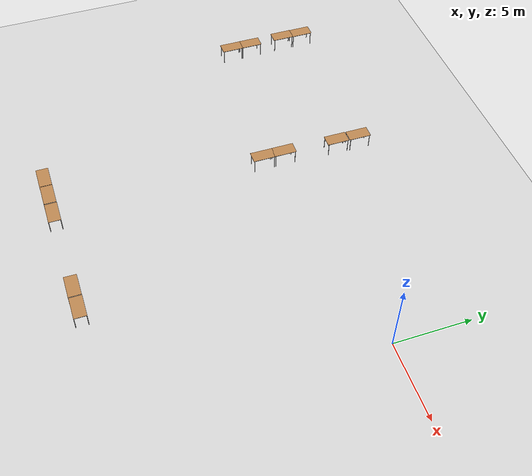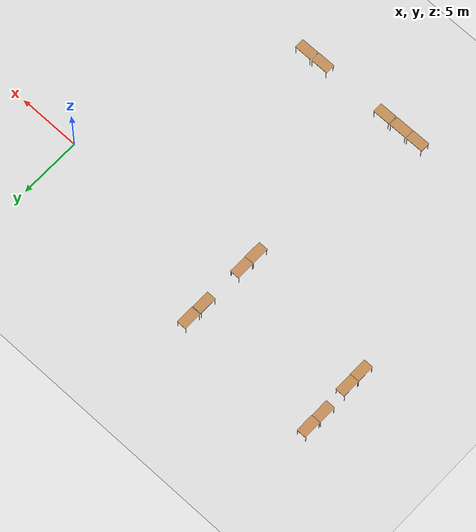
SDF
<sdf version="1.6">
 <world name="default">
  <model name="ground_plane">
   <static>1</static>
   <link name="link">
    <collision name="collision">
     <geometry><plane><normal>0 0 1</normal><size>100 100</size></plane></geometry>
     <surface><friction><ode><mu>100</mu><mu2>50</mu2></ode></friction></surface>
    </collision>
    <visual name="visual">
     <cast_shadows>0</cast_shadows>
     <geometry><plane><normal>0 0 1</normal><size>100 100</size></plane></geometry>
     <material>
      <script><uri>file://media/materials/scripts/gazebo.material</uri><name>Gazebo/Grey</name></script>
     </material>
    </visual>
   </link>
  </model>
  <model name="table_clone_11">
   <static>1</static>
   <link name="link">
    <collision name="surface">
     <pose>0 0 1 0 -0 0</pose>
     <geometry><box><size>1.5 0.8 0.03</size></box></geometry>
     <surface><friction><ode><mu>0.6</mu><mu2>0.6</mu2></ode></friction></surface>
    </collision>
    <visual name="visual1">
     <pose>0 0 1 0 -0 0</pose>
     <geometry><box><size>1.5 0.8 0.03</size></box></geometry>
     <material>
      <script><uri>file://media/materials/scripts/gazebo.material</uri><name>Gazebo/Wood</name></script>
     </material>
    </visual>
    <collision name="front_left_leg">
     <pose>0.68 0.38 0.5 0 -0 0</pose>
     <geometry><cylinder><radius>0.02</radius><length>1</length></cylinder></geometry>
    </collision>
    <visual name="front_left_leg">
     <pose>0.68 0.38 0.5 0 -0 0</pose>
     <geometry><cylinder><radius>0.02</radius><length>1</length></cylinder></geometry>
     <material>
      <script><uri>file://media/materials/scripts/gazebo.material</uri><name>Gazebo/Grey</name></script>
     </material>
    </visual>
    <collision name="front_right_leg">
     <pose>0.68 -0.38 0.5 0 -0 0</pose>
     <geometry><cylinder><radius>0.02</radius><length>1</length></cylinder></geometry>
    </collision>
    <visual name="front_right_leg">
     <pose>0.68 -0.38 0.5 0 -0 0</pose>
     <geometry><cylinder><radius>0.02</radius><length>1</length></cylinder></geometry>
     <material>
      <script><uri>file://media/materials/scripts/gazebo.material</uri><name>Gazebo/Grey</name></script>
     </material>
    </visual>
    <collision name="back_right_leg">
     <pose>-0.68 -0.38 0.5 0 -0 0</pose>
     <geometry><cylinder><radius>0.02</radius><length>1</length></cylinder></geometry>
    </collision>
    <visual name="back_right_leg">
     <pose>-0.68 -0.38 0.5 0 -0 0</pose>
     <geometry><cylinder><radius>0.02</radius><length>1</length></cylinder></geometry>
     <material>
      <script><uri>file://media/materials/scripts/gazebo.material</uri><name>Gazebo/Grey</name></script>
     </material>
    </visual>
    <collision name="back_left_leg">
     <pose>-0.68 0.38 0.5 0 -0 0</pose>
     <geometry><cylinder><radius>0.02</radius><length>1</length></cylinder></geometry>
    </collision>
    <visual name="back_left_leg">
     <pose>-0.68 0.38 0.5 0 -0 0</pose>
     <geometry><cylinder><radius>0.02</radius><length>1</length></cylinder></geometry>
     <material>
      <script><uri>file://media/materials/scripts/gazebo.material</uri><name>Gazebo/Grey</name></script>
     </material>
    </visual>
   </link>
   <pose>-7.35952 -16.3606 0 0 -0 0</pose>
  </model>
  <model name="table_clone_12">
   <static>1</static>
   <link name="link">
    <collision name="surface">
     <pose>0 0 1 0 -0 0</pose>
     <geometry><box><size>1.5 0.8 0.03</size></box></geometry>
     <surface><friction><ode><mu>0.6</mu><mu2>0.6</mu2></ode></friction></surface>
    </collision>
    <visual name="visual1">
     <pose>0 0 1 0 -0 0</pose>
     <geometry><box><size>1.5 0.8 0.03</size></box></geometry>
     <material>
      <script><uri>file://media/materials/scripts/gazebo.material</uri><name>Gazebo/Wood</name></script>
     </material>
    </visual>
    <collision name="front_left_leg">
     <pose>0.68 0.38 0.5 0 -0 0</pose>
     <geometry><cylinder><radius>0.02</radius><length>1</length></cylinder></geometry>
    </collision>
    <visual name="front_left_leg">
     <pose>0.68 0.38 0.5 0 -0 0</pose>
     <geometry><cylinder><radius>0.02</radius><length>1</length></cylinder></geometry>
     <material>
      <script><uri>file://media/materials/scripts/gazebo.material</uri><name>Gazebo/Grey</name></script>
     </material>
    </visual>
    <collision name="front_right_leg">
     <pose>0.68 -0.38 0.5 0 -0 0</pose>
     <geometry><cylinder><radius>0.02</radius><length>1</length></cylinder></geometry>
    </collision>
    <visual name="front_right_leg">
     <pose>0.68 -0.38 0.5 0 -0 0</pose>
     <geometry><cylinder><radius>0.02</radius><length>1</length></cylinder></geometry>
     <material>
      <script><uri>file://media/materials/scripts/gazebo.material</uri><name>Gazebo/Grey</name></script>
     </material>
    </visual>
    <collision name="back_right_leg">
     <pose>-0.68 -0.38 0.5 0 -0 0</pose>
     <geometry><cylinder><radius>0.02</radius><length>1</length></cylinder></geometry>
    </collision>
    <visual name="back_right_leg">
     <pose>-0.68 -0.38 0.5 0 -0 0</pose>
     <geometry><cylinder><radius>0.02</radius><length>1</length></cylinder></geometry>
     <material>
      <script><uri>file://media/materials/scripts/gazebo.material</uri><name>Gazebo/Grey</name></script>
     </material>
    </visual>
    <collision name="back_left_leg">
     <pose>-0.68 0.38 0.5 0 -0 0</pose>
     <geometry><cylinder><radius>0.02</radius><length>1</length></cylinder></geometry>
    </collision>
    <visual name="back_left_leg">
     <pose>-0.68 0.38 0.5 0 -0 0</pose>
     <geometry><cylinder><radius>0.02</radius><length>1</length></cylinder></geometry>
     <material>
      <script><uri>file://media/materials/scripts/gazebo.material</uri><name>Gazebo/Grey</name></script>
     </material>
    </visual>
   </link>
   <pose>-8.90652 -16.3761 0 0 -0 0</pose>
  </model>
  <model name="table_clone_13">
   <static>1</static>
   <link name="link">
    <collision name="surface">
     <pose>0 0 1 0 -0 0</pose>
     <geometry><box><size>1.5 0.8 0.03</size></box></geometry>
     <surface><friction><ode><mu>0.6</mu><mu2>0.6</mu2></ode></friction></surface>
    </collision>
    <visual name="visual1">
     <pose>0 0 1 0 -0 0</pose>
     <geometry><box><size>1.5 0.8 0.03</size></box></geometry>
     <material>
      <script><uri>file://media/materials/scripts/gazebo.material</uri><name>Gazebo/Wood</name></script>
     </material>
    </visual>
    <collision name="front_left_leg">
     <pose>0.68 0.38 0.5 0 -0 0</pose>
     <geometry><cylinder><radius>0.02</radius><length>1</length></cylinder></geometry>
    </collision>
    <visual name="front_left_leg">
     <pose>0.68 0.38 0.5 0 -0 0</pose>
     <geometry><cylinder><radius>0.02</radius><length>1</length></cylinder></geometry>
     <material>
      <script><uri>file://media/materials/scripts/gazebo.material</uri><name>Gazebo/Grey</name></script>
     </material>
    </visual>
    <collision name="front_right_leg">
     <pose>0.68 -0.38 0.5 0 -0 0</pose>
     <geometry><cylinder><radius>0.02</radius><length>1</length></cylinder></geometry>
    </collision>
    <visual name="front_right_leg">
     <pose>0.68 -0.38 0.5 0 -0 0</pose>
     <geometry><cylinder><radius>0.02</radius><length>1</length></cylinder></geometry>
     <material>
      <script><uri>file://media/materials/scripts/gazebo.material</uri><name>Gazebo/Grey</name></script>
     </material>
    </visual>
    <collision name="back_right_leg">
     <pose>-0.68 -0.38 0.5 0 -0 0</pose>
     <geometry><cylinder><radius>0.02</radius><length>1</length></cylinder></geometry>
    </collision>
    <visual name="back_right_leg">
     <pose>-0.68 -0.38 0.5 0 -0 0</pose>
     <geometry><cylinder><radius>0.02</radius><length>1</length></cylinder></geometry>
     <material>
      <script><uri>file://media/materials/scripts/gazebo.material</uri><name>Gazebo/Grey</name></script>
     </material>
    </visual>
    <collision name="back_left_leg">
     <pose>-0.68 0.38 0.5 0 -0 0</pose>
     <geometry><cylinder><radius>0.02</radius><length>1</length></cylinder></geometry>
    </collision>
    <visual name="back_left_leg">
     <pose>-0.68 0.38 0.5 0 -0 0</pose>
     <geometry><cylinder><radius>0.02</radius><length>1</length></cylinder></geometry>
     <material>
      <script><uri>file://media/materials/scripts/gazebo.material</uri><name>Gazebo/Grey</name></script>
     </material>
    </visual>
   </link>
   <pose>-14.8044 -16.4759 0 0 -0 0</pose>
  </model>
  <model name="table_clone_14">
   <static>1</static>
   <link name="link">
    <collision name="surface">
     <pose>0 0 1 0 -0 0</pose>
     <geometry><box><size>1.5 0.8 0.03</size></box></geometry>
     <surface><friction><ode><mu>0.6</mu><mu2>0.6</mu2></ode></friction></surface>
    </collision>
    <visual name="visual1">
     <pose>0 0 1 0 -0 0</pose>
     <geometry><box><size>1.5 0.8 0.03</size></box></geometry>
     <material>
      <script><uri>file://media/materials/scripts/gazebo.material</uri><name>Gazebo/Wood</name></script>
     </material>
    </visual>
    <collision name="front_left_leg">
     <pose>0.68 0.38 0.5 0 -0 0</pose>
     <geometry><cylinder><radius>0.02</radius><length>1</length></cylinder></geometry>
    </collision>
    <visual name="front_left_leg">
     <pose>0.68 0.38 0.5 0 -0 0</pose>
     <geometry><cylinder><radius>0.02</radius><length>1</length></cylinder></geometry>
     <material>
      <script><uri>file://media/materials/scripts/gazebo.material</uri><name>Gazebo/Grey</name></script>
     </material>
    </visual>
    <collision name="front_right_leg">
     <pose>0.68 -0.38 0.5 0 -0 0</pose>
     <geometry><cylinder><radius>0.02</radius><length>1</length></cylinder></geometry>
    </collision>
    <visual name="front_right_leg">
     <pose>0.68 -0.38 0.5 0 -0 0</pose>
     <geometry><cylinder><radius>0.02</radius><length>1</length></cylinder></geometry>
     <material>
      <script><uri>file://media/materials/scripts/gazebo.material</uri><name>Gazebo/Grey</name></script>
     </material>
    </visual>
    <collision name="back_right_leg">
     <pose>-0.68 -0.38 0.5 0 -0 0</pose>
     <geometry><cylinder><radius>0.02</radius><length>1</length></cylinder></geometry>
    </collision>
    <visual name="back_right_leg">
     <pose>-0.68 -0.38 0.5 0 -0 0</pose>
     <geometry><cylinder><radius>0.02</radius><length>1</length></cylinder></geometry>
     <material>
      <script><uri>file://media/materials/scripts/gazebo.material</uri><name>Gazebo/Grey</name></script>
     </material>
    </visual>
    <collision name="back_left_leg">
     <pose>-0.68 0.38 0.5 0 -0 0</pose>
     <geometry><cylinder><radius>0.02</radius><length>1</length></cylinder></geometry>
    </collision>
    <visual name="back_left_leg">
     <pose>-0.68 0.38 0.5 0 -0 0</pose>
     <geometry><cylinder><radius>0.02</radius><length>1</length></cylinder></geometry>
     <material>
      <script><uri>file://media/materials/scripts/gazebo.material</uri><name>Gazebo/Grey</name></script>
     </material>
    </visual>
   </link>
   <pose>-16.3628 -16.486 0 0 -0 0</pose>
  </model>
  <model name="table_clone_15">
   <static>1</static>
   <link name="link">
    <collision name="surface">
     <pose>0 0 1 0 -0 0</pose>
     <geometry><box><size>1.5 0.8 0.03</size></box></geometry>
     <surface><friction><ode><mu>0.6</mu><mu2>0.6</mu2></ode></friction></surface>
    </collision>
    <visual name="visual1">
     <pose>0 0 1 0 -0 0</pose>
     <geometry><box><size>1.5 0.8 0.03</size></box></geometry>
     <material>
      <script><uri>file://media/materials/scripts/gazebo.material</uri><name>Gazebo/Wood</name></script>
     </material>
    </visual>
    <collision name="front_left_leg">
     <pose>0.68 0.38 0.5 0 -0 0</pose>
     <geometry><cylinder><radius>0.02</radius><length>1</length></cylinder></geometry>
    </collision>
    <visual name="front_left_leg">
     <pose>0.68 0.38 0.5 0 -0 0</pose>
     <geometry><cylinder><radius>0.02</radius><length>1</length></cylinder></geometry>
     <material>
      <script><uri>file://media/materials/scripts/gazebo.material</uri><name>Gazebo/Grey</name></script>
     </material>
    </visual>
    <collision name="front_right_leg">
     <pose>0.68 -0.38 0.5 0 -0 0</pose>
     <geometry><cylinder><radius>0.02</radius><length>1</length></cylinder></geometry>
    </collision>
    <visual name="front_right_leg">
     <pose>0.68 -0.38 0.5 0 -0 0</pose>
     <geometry><cylinder><radius>0.02</radius><length>1</length></cylinder></geometry>
     <material>
      <script><uri>file://media/materials/scripts/gazebo.material</uri><name>Gazebo/Grey</name></script>
     </material>
    </visual>
    <collision name="back_right_leg">
     <pose>-0.68 -0.38 0.5 0 -0 0</pose>
     <geometry><cylinder><radius>0.02</radius><length>1</length></cylinder></geometry>
    </collision>
    <visual name="back_right_leg">
     <pose>-0.68 -0.38 0.5 0 -0 0</pose>
     <geometry><cylinder><radius>0.02</radius><length>1</length></cylinder></geometry>
     <material>
      <script><uri>file://media/materials/scripts/gazebo.material</uri><name>Gazebo/Grey</name></script>
     </material>
    </visual>
    <collision name="back_left_leg">
     <pose>-0.68 0.38 0.5 0 -0 0</pose>
     <geometry><cylinder><radius>0.02</radius><length>1</length></cylinder></geometry>
    </collision>
    <visual name="back_left_leg">
     <pose>-0.68 0.38 0.5 0 -0 0</pose>
     <geometry><cylinder><radius>0.02</radius><length>1</length></cylinder></geometry>
     <material>
      <script><uri>file://media/materials/scripts/gazebo.material</uri><name>Gazebo/Grey</name></script>
     </material>
    </visual>
   </link>
   <pose>-17.8965 -16.4965 0 0 -0 0</pose>
  </model>
  <model name="table_clone_16">
   <static>1</static>
   <link name="link">
    <collision name="surface">
     <pose>0 0 1 0 -0 0</pose>
     <geometry><box><size>1.5 0.8 0.03</size></box></geometry>
     <surface><friction><ode><mu>0.6</mu><mu2>0.6</mu2></ode></friction></surface>
    </collision>
    <visual name="visual1">
     <pose>0 0 1 0 -0 0</pose>
     <geometry><box><size>1.5 0.8 0.03</size></box></geometry>
     <material>
      <script><uri>file://media/materials/scripts/gazebo.material</uri><name>Gazebo/Wood</name></script>
     </material>
    </visual>
    <collision name="front_left_leg">
     <pose>0.68 0.38 0.5 0 -0 0</pose>
     <geometry><cylinder><radius>0.02</radius><length>1</length></cylinder></geometry>
    </collision>
    <visual name="front_left_leg">
     <pose>0.68 0.38 0.5 0 -0 0</pose>
     <geometry><cylinder><radius>0.02</radius><length>1</length></cylinder></geometry>
     <material>
      <script><uri>file://media/materials/scripts/gazebo.material</uri><name>Gazebo/Grey</name></script>
     </material>
    </visual>
    <collision name="front_right_leg">
     <pose>0.68 -0.38 0.5 0 -0 0</pose>
     <geometry><cylinder><radius>0.02</radius><length>1</length></cylinder></geometry>
    </collision>
    <visual name="front_right_leg">
     <pose>0.68 -0.38 0.5 0 -0 0</pose>
     <geometry><cylinder><radius>0.02</radius><length>1</length></cylinder></geometry>
     <material>
      <script><uri>file://media/materials/scripts/gazebo.material</uri><name>Gazebo/Grey</name></script>
     </material>
    </visual>
    <collision name="back_right_leg">
     <pose>-0.68 -0.38 0.5 0 -0 0</pose>
     <geometry><cylinder><radius>0.02</radius><length>1</length></cylinder></geometry>
    </collision>
    <visual name="back_right_leg">
     <pose>-0.68 -0.38 0.5 0 -0 0</pose>
     <geometry><cylinder><radius>0.02</radius><length>1</length></cylinder></geometry>
     <material>
      <script><uri>file://media/materials/scripts/gazebo.material</uri><name>Gazebo/Grey</name></script>
     </material>
    </visual>
    <collision name="back_left_leg">
     <pose>-0.68 0.38 0.5 0 -0 0</pose>
     <geometry><cylinder><radius>0.02</radius><length>1</length></cylinder></geometry>
    </collision>
    <visual name="back_left_leg">
     <pose>-0.68 0.38 0.5 0 -0 0</pose>
     <geometry><cylinder><radius>0.02</radius><length>1</length></cylinder></geometry>
     <material>
      <script><uri>file://media/materials/scripts/gazebo.material</uri><name>Gazebo/Grey</name></script>
     </material>
    </visual>
   </link>
   <pose>-15.3265 -2.46132 0 0 0 -1.57408</pose>
  </model>
  <model name="table_clone_16_clone">
   <static>1</static>
   <link name="link">
    <collision name="surface">
     <pose>0 0 1 0 -0 0</pose>
     <geometry><box><size>1.5 0.8 0.03</size></box></geometry>
     <surface><friction><ode><mu>0.6</mu><mu2>0.6</mu2></ode></friction></surface>
    </collision>
    <visual name="visual1">
     <pose>0 0 1 0 -0 0</pose>
     <geometry><box><size>1.5 0.8 0.03</size></box></geometry>
     <material>
      <script><uri>file://media/materials/scripts/gazebo.material</uri><name>Gazebo/Wood</name></script>
     </material>
    </visual>
    <collision name="front_left_leg">
     <pose>0.68 0.38 0.5 0 -0 0</pose>
     <geometry><cylinder><radius>0.02</radius><length>1</length></cylinder></geometry>
    </collision>
    <visual name="front_left_leg">
     <pose>0.68 0.38 0.5 0 -0 0</pose>
     <geometry><cylinder><radius>0.02</radius><length>1</length></cylinder></geometry>
     <material>
      <script><uri>file://media/materials/scripts/gazebo.material</uri><name>Gazebo/Grey</name></script>
     </material>
    </visual>
    <collision name="front_right_leg">
     <pose>0.68 -0.38 0.5 0 -0 0</pose>
     <geometry><cylinder><radius>0.02</radius><length>1</length></cylinder></geometry>
    </collision>
    <visual name="front_right_leg">
     <pose>0.68 -0.38 0.5 0 -0 0</pose>
     <geometry><cylinder><radius>0.02</radius><length>1</length></cylinder></geometry>
     <material>
      <script><uri>file://media/materials/scripts/gazebo.material</uri><name>Gazebo/Grey</name></script>
     </material>
    </visual>
    <collision name="back_right_leg">
     <pose>-0.68 -0.38 0.5 0 -0 0</pose>
     <geometry><cylinder><radius>0.02</radius><length>1</length></cylinder></geometry>
    </collision>
    <visual name="back_right_leg">
     <pose>-0.68 -0.38 0.5 0 -0 0</pose>
     <geometry><cylinder><radius>0.02</radius><length>1</length></cylinder></geometry>
     <material>
      <script><uri>file://media/materials/scripts/gazebo.material</uri><name>Gazebo/Grey</name></script>
     </material>
    </visual>
    <collision name="back_left_leg">
     <pose>-0.68 0.38 0.5 0 -0 0</pose>
     <geometry><cylinder><radius>0.02</radius><length>1</length></cylinder></geometry>
    </collision>
    <visual name="back_left_leg">
     <pose>-0.68 0.38 0.5 0 -0 0</pose>
     <geometry><cylinder><radius>0.02</radius><length>1</length></cylinder></geometry>
     <material>
      <script><uri>file://media/materials/scripts/gazebo.material</uri><name>Gazebo/Grey</name></script>
     </material>
    </visual>
   </link>
   <pose>-15.3278 -0.996963 0 0 0 -1.57408</pose>
  </model>
  <model name="table_clone_16_clone_0">
   <static>1</static>
   <link name="link">
    <collision name="surface">
     <pose>0 0 1 0 -0 0</pose>
     <geometry><box><size>1.5 0.8 0.03</size></box></geometry>
     <surface><friction><ode><mu>0.6</mu><mu2>0.6</mu2></ode></friction></surface>
    </collision>
    <visual name="visual1">
     <pose>0 0 1 0 -0 0</pose>
     <geometry><box><size>1.5 0.8 0.03</size></box></geometry>
     <material>
      <script><uri>file://media/materials/scripts/gazebo.material</uri><name>Gazebo/Wood</name></script>
     </material>
    </visual>
    <collision name="front_left_leg">
     <pose>0.68 0.38 0.5 0 -0 0</pose>
     <geometry><cylinder><radius>0.02</radius><length>1</length></cylinder></geometry>
    </collision>
    <visual name="front_left_leg">
     <pose>0.68 0.38 0.5 0 -0 0</pose>
     <geometry><cylinder><radius>0.02</radius><length>1</length></cylinder></geometry>
     <material>
      <script><uri>file://media/materials/scripts/gazebo.material</uri><name>Gazebo/Grey</name></script>
     </material>
    </visual>
    <collision name="front_right_leg">
     <pose>0.68 -0.38 0.5 0 -0 0</pose>
     <geometry><cylinder><radius>0.02</radius><length>1</length></cylinder></geometry>
    </collision>
    <visual name="front_right_leg">
     <pose>0.68 -0.38 0.5 0 -0 0</pose>
     <geometry><cylinder><radius>0.02</radius><length>1</length></cylinder></geometry>
     <material>
      <script><uri>file://media/materials/scripts/gazebo.material</uri><name>Gazebo/Grey</name></script>
     </material>
    </visual>
    <collision name="back_right_leg">
     <pose>-0.68 -0.38 0.5 0 -0 0</pose>
     <geometry><cylinder><radius>0.02</radius><length>1</length></cylinder></geometry>
    </collision>
    <visual name="back_right_leg">
     <pose>-0.68 -0.38 0.5 0 -0 0</pose>
     <geometry><cylinder><radius>0.02</radius><length>1</length></cylinder></geometry>
     <material>
      <script><uri>file://media/materials/scripts/gazebo.material</uri><name>Gazebo/Grey</name></script>
     </material>
    </visual>
    <collision name="back_left_leg">
     <pose>-0.68 0.38 0.5 0 -0 0</pose>
     <geometry><cylinder><radius>0.02</radius><length>1</length></cylinder></geometry>
    </collision>
    <visual name="back_left_leg">
     <pose>-0.68 0.38 0.5 0 -0 0</pose>
     <geometry><cylinder><radius>0.02</radius><length>1</length></cylinder></geometry>
     <material>
      <script><uri>file://media/materials/scripts/gazebo.material</uri><name>Gazebo/Grey</name></script>
     </material>
    </visual>
   </link>
   <pose>-15.2082 2.71595 0 0 0 -1.57408</pose>
  </model>
  <model name="table_clone_16_clone_1">
   <static>1</static>
   <link name="link">
    <collision name="surface">
     <pose>0 0 1 0 -0 0</pose>
     <geometry><box><size>1.5 0.8 0.03</size></box></geometry>
     <surface><friction><ode><mu>0.6</mu><mu2>0.6</mu2></ode></friction></surface>
    </collision>
    <visual name="visual1">
     <pose>0 0 1 0 -0 0</pose>
     <geometry><box><size>1.5 0.8 0.03</size></box></geometry>
     <material>
      <script><uri>file://media/materials/scripts/gazebo.material</uri><name>Gazebo/Wood</name></script>
     </material>
    </visual>
    <collision name="front_left_leg">
     <pose>0.68 0.38 0.5 0 -0 0</pose>
     <geometry><cylinder><radius>0.02</radius><length>1</length></cylinder></geometry>
    </collision>
    <visual name="front_left_leg">
     <pose>0.68 0.38 0.5 0 -0 0</pose>
     <geometry><cylinder><radius>0.02</radius><length>1</length></cylinder></geometry>
     <material>
      <script><uri>file://media/materials/scripts/gazebo.material</uri><name>Gazebo/Grey</name></script>
     </material>
    </visual>
    <collision name="front_right_leg">
     <pose>0.68 -0.38 0.5 0 -0 0</pose>
     <geometry><cylinder><radius>0.02</radius><length>1</length></cylinder></geometry>
    </collision>
    <visual name="front_right_leg">
     <pose>0.68 -0.38 0.5 0 -0 0</pose>
     <geometry><cylinder><radius>0.02</radius><length>1</length></cylinder></geometry>
     <material>
      <script><uri>file://media/materials/scripts/gazebo.material</uri><name>Gazebo/Grey</name></script>
     </material>
    </visual>
    <collision name="back_right_leg">
     <pose>-0.68 -0.38 0.5 0 -0 0</pose>
     <geometry><cylinder><radius>0.02</radius><length>1</length></cylinder></geometry>
    </collision>
    <visual name="back_right_leg">
     <pose>-0.68 -0.38 0.5 0 -0 0</pose>
     <geometry><cylinder><radius>0.02</radius><length>1</length></cylinder></geometry>
     <material>
      <script><uri>file://media/materials/scripts/gazebo.material</uri><name>Gazebo/Grey</name></script>
     </material>
    </visual>
    <collision name="back_left_leg">
     <pose>-0.68 0.38 0.5 0 -0 0</pose>
     <geometry><cylinder><radius>0.02</radius><length>1</length></cylinder></geometry>
    </collision>
    <visual name="back_left_leg">
     <pose>-0.68 0.38 0.5 0 -0 0</pose>
     <geometry><cylinder><radius>0.02</radius><length>1</length></cylinder></geometry>
     <material>
      <script><uri>file://media/materials/scripts/gazebo.material</uri><name>Gazebo/Grey</name></script>
     </material>
    </visual>
   </link>
   <pose>-15.1862 4.26709 0 0 0 -1.57408</pose>
  </model>
  <model name="table_clone_16_clone_2">
   <static>1</static>
   <link name="link">
    <collision name="surface">
     <pose>0 0 1 0 -0 0</pose>
     <geometry><box><size>1.5 0.8 0.03</size></box></geometry>
     <surface><friction><ode><mu>0.6</mu><mu2>0.6</mu2></ode></friction></surface>
    </collision>
    <visual name="visual1">
     <pose>0 0 1 0 -0 0</pose>
     <geometry><box><size>1.5 0.8 0.03</size></box></geometry>
     <material>
      <script><uri>file://media/materials/scripts/gazebo.material</uri><name>Gazebo/Wood</name></script>
     </material>
    </visual>
    <collision name="front_left_leg">
     <pose>0.68 0.38 0.5 0 -0 0</pose>
     <geometry><cylinder><radius>0.02</radius><length>1</length></cylinder></geometry>
    </collision>
    <visual name="front_left_leg">
     <pose>0.68 0.38 0.5 0 -0 0</pose>
     <geometry><cylinder><radius>0.02</radius><length>1</length></cylinder></geometry>
     <material>
      <script><uri>file://media/materials/scripts/gazebo.material</uri><name>Gazebo/Grey</name></script>
     </material>
    </visual>
    <collision name="front_right_leg">
     <pose>0.68 -0.38 0.5 0 -0 0</pose>
     <geometry><cylinder><radius>0.02</radius><length>1</length></cylinder></geometry>
    </collision>
    <visual name="front_right_leg">
     <pose>0.68 -0.38 0.5 0 -0 0</pose>
     <geometry><cylinder><radius>0.02</radius><length>1</length></cylinder></geometry>
     <material>
      <script><uri>file://media/materials/scripts/gazebo.material</uri><name>Gazebo/Grey</name></script>
     </material>
    </visual>
    <collision name="back_right_leg">
     <pose>-0.68 -0.38 0.5 0 -0 0</pose>
     <geometry><cylinder><radius>0.02</radius><length>1</length></cylinder></geometry>
    </collision>
    <visual name="back_right_leg">
     <pose>-0.68 -0.38 0.5 0 -0 0</pose>
     <geometry><cylinder><radius>0.02</radius><length>1</length></cylinder></geometry>
     <material>
      <script><uri>file://media/materials/scripts/gazebo.material</uri><name>Gazebo/Grey</name></script>
     </material>
    </visual>
    <collision name="back_left_leg">
     <pose>-0.68 0.38 0.5 0 -0 0</pose>
     <geometry><cylinder><radius>0.02</radius><length>1</length></cylinder></geometry>
    </collision>
    <visual name="back_left_leg">
     <pose>-0.68 0.38 0.5 0 -0 0</pose>
     <geometry><cylinder><radius>0.02</radius><length>1</length></cylinder></geometry>
     <material>
      <script><uri>file://media/materials/scripts/gazebo.material</uri><name>Gazebo/Grey</name></script>
     </material>
    </visual>
   </link>
   <pose>-26.5552 0.399615 0 0 0 -1.57408</pose>
  </model>
  <model name="table_clone_16_clone_3">
   <static>1</static>
   <link name="link">
    <collision name="surface">
     <pose>0 0 1 0 -0 0</pose>
     <geometry><box><size>1.5 0.8 0.03</size></box></geometry>
     <surface><friction><ode><mu>0.6</mu><mu2>0.6</mu2></ode></friction></surface>
    </collision>
    <visual name="visual1">
     <pose>0 0 1 0 -0 0</pose>
     <geometry><box><size>1.5 0.8 0.03</size></box></geometry>
     <material>
      <script><uri>file://media/materials/scripts/gazebo.material</uri><name>Gazebo/Wood</name></script>
     </material>
    </visual>
    <collision name="front_left_leg">
     <pose>0.68 0.38 0.5 0 -0 0</pose>
     <geometry><cylinder><radius>0.02</radius><length>1</length></cylinder></geometry>
    </collision>
    <visual name="front_left_leg">
     <pose>0.68 0.38 0.5 0 -0 0</pose>
     <geometry><cylinder><radius>0.02</radius><length>1</length></cylinder></geometry>
     <material>
      <script><uri>file://media/materials/scripts/gazebo.material</uri><name>Gazebo/Grey</name></script>
     </material>
    </visual>
    <collision name="front_right_leg">
     <pose>0.68 -0.38 0.5 0 -0 0</pose>
     <geometry><cylinder><radius>0.02</radius><length>1</length></cylinder></geometry>
    </collision>
    <visual name="front_right_leg">
     <pose>0.68 -0.38 0.5 0 -0 0</pose>
     <geometry><cylinder><radius>0.02</radius><length>1</length></cylinder></geometry>
     <material>
      <script><uri>file://media/materials/scripts/gazebo.material</uri><name>Gazebo/Grey</name></script>
     </material>
    </visual>
    <collision name="back_right_leg">
     <pose>-0.68 -0.38 0.5 0 -0 0</pose>
     <geometry><cylinder><radius>0.02</radius><length>1</length></cylinder></geometry>
    </collision>
    <visual name="back_right_leg">
     <pose>-0.68 -0.38 0.5 0 -0 0</pose>
     <geometry><cylinder><radius>0.02</radius><length>1</length></cylinder></geometry>
     <material>
      <script><uri>file://media/materials/scripts/gazebo.material</uri><name>Gazebo/Grey</name></script>
     </material>
    </visual>
    <collision name="back_left_leg">
     <pose>-0.68 0.38 0.5 0 -0 0</pose>
     <geometry><cylinder><radius>0.02</radius><length>1</length></cylinder></geometry>
    </collision>
    <visual name="back_left_leg">
     <pose>-0.68 0.38 0.5 0 -0 0</pose>
     <geometry><cylinder><radius>0.02</radius><length>1</length></cylinder></geometry>
     <material>
      <script><uri>file://media/materials/scripts/gazebo.material</uri><name>Gazebo/Grey</name></script>
     </material>
    </visual>
   </link>
   <pose>-26.5524 -1.04166 0 0 0 -1.57408</pose>
  </model>
  <model name="table_clone_16_clone_4">
   <static>1</static>
   <link name="link">
    <collision name="surface">
     <pose>0 0 1 0 -0 0</pose>
     <geometry><box><size>1.5 0.8 0.03</size></box></geometry>
     <surface><friction><ode><mu>0.6</mu><mu2>0.6</mu2></ode></friction></surface>
    </collision>
    <visual name="visual1">
     <pose>0 0 1 0 -0 0</pose>
     <geometry><box><size>1.5 0.8 0.03</size></box></geometry>
     <material>
      <script><uri>file://media/materials/scripts/gazebo.material</uri><name>Gazebo/Wood</name></script>
     </material>
    </visual>
    <collision name="front_left_leg">
     <pose>0.68 0.38 0.5 0 -0 0</pose>
     <geometry><cylinder><radius>0.02</radius><length>1</length></cylinder></geometry>
    </collision>
    <visual name="front_left_leg">
     <pose>0.68 0.38 0.5 0 -0 0</pose>
     <geometry><cylinder><radius>0.02</radius><length>1</length></cylinder></geometry>
     <material>
      <script><uri>file://media/materials/scripts/gazebo.material</uri><name>Gazebo/Grey</name></script>
     </material>
    </visual>
    <collision name="front_right_leg">
     <pose>0.68 -0.38 0.5 0 -0 0</pose>
     <geometry><cylinder><radius>0.02</radius><length>1</length></cylinder></geometry>
    </collision>
    <visual name="front_right_leg">
     <pose>0.68 -0.38 0.5 0 -0 0</pose>
     <geometry><cylinder><radius>0.02</radius><length>1</length></cylinder></geometry>
     <material>
      <script><uri>file://media/materials/scripts/gazebo.material</uri><name>Gazebo/Grey</name></script>
     </material>
    </visual>
    <collision name="back_right_leg">
     <pose>-0.68 -0.38 0.5 0 -0 0</pose>
     <geometry><cylinder><radius>0.02</radius><length>1</length></cylinder></geometry>
    </collision>
    <visual name="back_right_leg">
     <pose>-0.68 -0.38 0.5 0 -0 0</pose>
     <geometry><cylinder><radius>0.02</radius><length>1</length></cylinder></geometry>
     <material>
      <script><uri>file://media/materials/scripts/gazebo.material</uri><name>Gazebo/Grey</name></script>
     </material>
    </visual>
    <collision name="back_left_leg">
     <pose>-0.68 0.38 0.5 0 -0 0</pose>
     <geometry><cylinder><radius>0.02</radius><length>1</length></cylinder></geometry>
    </collision>
    <visual name="back_left_leg">
     <pose>-0.68 0.38 0.5 0 -0 0</pose>
     <geometry><cylinder><radius>0.02</radius><length>1</length></cylinder></geometry>
     <material>
      <script><uri>file://media/materials/scripts/gazebo.material</uri><name>Gazebo/Grey</name></script>
     </material>
    </visual>
   </link>
   <pose>-26.637 2.94197 0 0 0 -1.57408</pose>
  </model>
  <model name="table_clone_16_clone_5">
   <static>1</static>
   <link name="link">
    <collision name="surface">
     <pose>0 0 1 0 -0 0</pose>
     <geometry><box><size>1.5 0.8 0.03</size></box></geometry>
     <surface><friction><ode><mu>0.6</mu><mu2>0.6</mu2></ode></friction></surface>
    </collision>
    <visual name="visual1">
     <pose>0 0 1 0 -0 0</pose>
     <geometry><box><size>1.5 0.8 0.03</size></box></geometry>
     <material>
      <script><uri>file://media/materials/scripts/gazebo.material</uri><name>Gazebo/Wood</name></script>
     </material>
    </visual>
    <collision name="front_left_leg">
     <pose>0.68 0.38 0.5 0 -0 0</pose>
     <geometry><cylinder><radius>0.02</radius><length>1</length></cylinder></geometry>
    </collision>
    <visual name="front_left_leg">
     <pose>0.68 0.38 0.5 0 -0 0</pose>
     <geometry><cylinder><radius>0.02</radius><length>1</length></cylinder></geometry>
     <material>
      <script><uri>file://media/materials/scripts/gazebo.material</uri><name>Gazebo/Grey</name></script>
     </material>
    </visual>
    <collision name="front_right_leg">
     <pose>0.68 -0.38 0.5 0 -0 0</pose>
     <geometry><cylinder><radius>0.02</radius><length>1</length></cylinder></geometry>
    </collision>
    <visual name="front_right_leg">
     <pose>0.68 -0.38 0.5 0 -0 0</pose>
     <geometry><cylinder><radius>0.02</radius><length>1</length></cylinder></geometry>
     <material>
      <script><uri>file://media/materials/scripts/gazebo.material</uri><name>Gazebo/Grey</name></script>
     </material>
    </visual>
    <collision name="back_right_leg">
     <pose>-0.68 -0.38 0.5 0 -0 0</pose>
     <geometry><cylinder><radius>0.02</radius><length>1</length></cylinder></geometry>
    </collision>
    <visual name="back_right_leg">
     <pose>-0.68 -0.38 0.5 0 -0 0</pose>
     <geometry><cylinder><radius>0.02</radius><length>1</length></cylinder></geometry>
     <material>
      <script><uri>file://media/materials/scripts/gazebo.material</uri><name>Gazebo/Grey</name></script>
     </material>
    </visual>
    <collision name="back_left_leg">
     <pose>-0.68 0.38 0.5 0 -0 0</pose>
     <geometry><cylinder><radius>0.02</radius><length>1</length></cylinder></geometry>
    </collision>
    <visual name="back_left_leg">
     <pose>-0.68 0.38 0.5 0 -0 0</pose>
     <geometry><cylinder><radius>0.02</radius><length>1</length></cylinder></geometry>
     <material>
      <script><uri>file://media/materials/scripts/gazebo.material</uri><name>Gazebo/Grey</name></script>
     </material>
    </visual>
   </link>
   <pose>-26.616 4.40634 0 0 0 -1.57408</pose>
  </model>
 </world>
</sdf>
